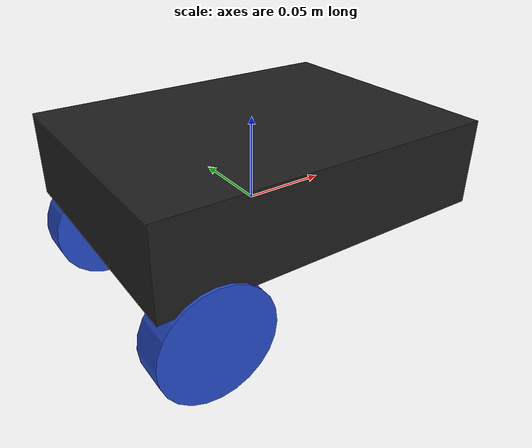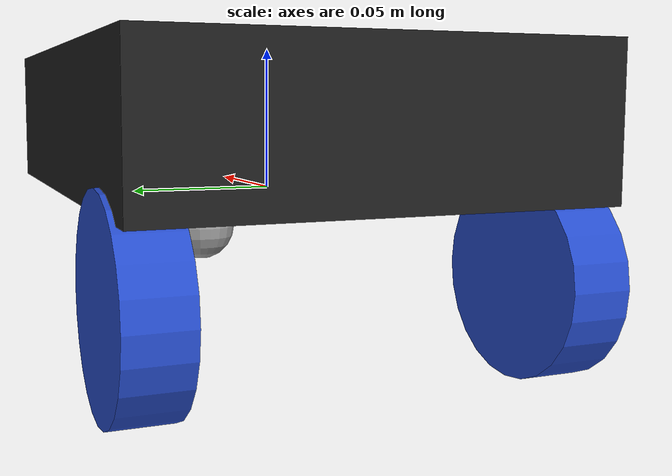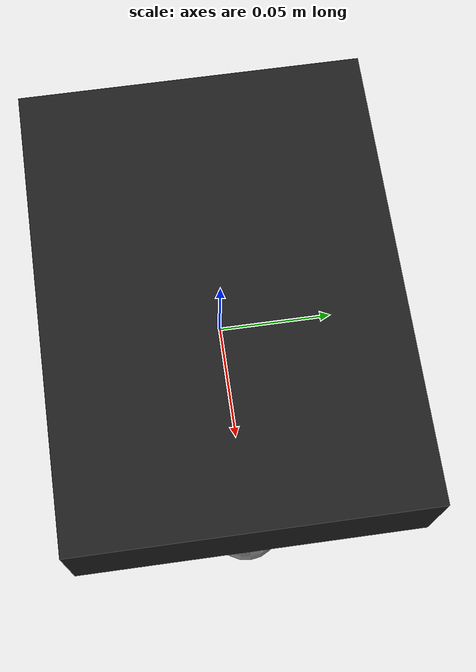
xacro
<?xml version="1.0"?>
<!-- Basic differential drive mobile base -->
<robot xmlns:xacro="http://www.ros.org/wiki/xacro" name="diffdrive_robot">
  <xacro:arg name="prefix" default="" />

  <xacro:include filename="$(find farmbot_description)/urdf/diffbot_description.urdf.xacro" />

  <!-- Import Rviz colors -->
  <xacro:include filename="$(find farmbot_description)/urdf/diffbot.materials.xacro" />

</robot>

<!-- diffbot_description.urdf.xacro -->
<robot xmlns:xacro="http://www.ros.org/wiki/xacro">

  <!-- Constants for robot dimensions -->
  <xacro:property name="PI" value="3.1415926535897931"/>
  <xacro:property name="base_mass" value="0.3" /> <!-- arbitrary value for base mass -->
  <xacro:property name="base_width" value="0.2" />
  <xacro:property name="base_length" value="0.15" />
  <xacro:property name="base_height" value="0.05" />
  <xacro:property name="wheel_mass" value="0.3" /> <!-- arbitrary value for wheel mass -->
  <xacro:property name="wheel_len" value="0.020" />
  <xacro:property name="wheel_radius" value="0.033" />
  <xacro:property name="caster_wheel_mass" value="0.1" /> <!-- arbitrary value for caster wheel mass -->
  <xacro:property name="caster_wheel_radius" value="0.015" />
  <xacro:property name="z_offset" value="-${base_height/2}" /> <!-- Space btw top of beam and the each joint -->

  <!-- Base Link -->
  <link name="base_link">
    <collision>
      <origin xyz="0 0 0" rpy="0 0 0"/>
      <geometry>
        <box size="${base_width} ${base_length} ${base_height}"/>
      </geometry>
    </collision>

    <visual>
      <origin xyz="0 0 ${base_height/2}" rpy="0 0 0"/>
      <geometry>
        <box size="${base_width} ${base_length} ${base_height}"/>
      </geometry>
      <material name="black"/>
    </visual>

    <inertial>
      <origin xyz="0 0 0" rpy="0 0 0"/>
      <mass value="${base_mass}"/>
      <inertia
        ixx="${base_mass / 12.0 * (base_length*base_length + base_height*base_height)}" ixy="0.0" ixz="0.0"
        iyy="${base_mass / 12.0 * (base_height*base_height + base_width*base_width)}" iyz="0.0"
        izz="${base_mass / 12.0 * (base_width*base_width + base_length*base_length)}"/>
      </inertial>
    </link>

    <joint name="left_wheel_joint" type="continuous">
      <parent link="base_link"/>
      <child link="left_wheel"/>
      <origin xyz="-0.07 -${base_width/3} ${z_offset}" rpy="0 0 0"/>
      <axis xyz="0 1 0"/>
      <dynamics damping="0.2"/>
    </joint>

    <!-- left wheel Link -->
    <link name="left_wheel">
      <collision>
        <origin xyz="0 0 0" rpy="${PI/2} 0 0"/>
        <geometry>
          <cylinder length="${wheel_len}" radius="${wheel_radius}"/>
        </geometry>
      </collision>

      <visual>
        <origin xyz="0 0 0" rpy="${PI/2} 0 0"/>
        <geometry>
          <cylinder length="${wheel_len}" radius="${wheel_radius}"/>
        </geometry>
        <material name="blue"/>
      </visual>

      <inertial>
        <origin xyz="0 0 0" rpy="${PI/2} 0 0"/>
        <mass value="${wheel_mass}"/>
        <inertia
          ixx="${0.5 * wheel_mass * wheel_radius * wheel_radius}" ixy="0.0" ixz="0.0"
          iyy="${0.5 * wheel_mass * wheel_radius * wheel_radius}" iyz="0.0"
          izz="${0.5 * wheel_mass * (wheel_radius * wheel_radius + wheel_len * wheel_len) / 2}" />
      </inertial>
      </link>

    <joint name="right_wheel_joint" type="continuous">
      <parent link="base_link"/>
      <child link="right_wheel"/>
      <origin xyz="-0.07 ${base_width/3} ${z_offset}" rpy="0 0 0"/>
      <axis xyz="0 1 0"/>
      <dynamics damping="0.2"/>
    </joint>

    <!-- right wheel Link -->
    <link name="right_wheel">
      <collision>
        <origin xyz="0 0 0" rpy="${PI/2} 0 0"/>
        <geometry>
          <cylinder length="${wheel_len}" radius="${wheel_radius}"/>
        </geometry>
      </collision>

      <visual>
        <origin xyz="0 0 0" rpy="${PI/2} 0 0"/>
        <geometry>
          <cylinder length="${wheel_len}" radius="${wheel_radius}"/>
        </geometry>
        <material name="blue"/>
      </visual>

      <inertial>
        <origin xyz="0 0 0" rpy="${PI/2} 0 0"/>
        <mass value="${wheel_mass}"/>
        <inertia
          ixx="${0.5 * wheel_mass * wheel_radius * wheel_radius}" ixy="0.0" ixz="0.0"
          iyy="${0.5 * wheel_mass * wheel_radius * wheel_radius}" iyz="0.0"
          izz="${0.5 * wheel_mass * (wheel_radius * wheel_radius + wheel_len * wheel_len) / 2}"/>
        </inertial>
      </link>

    <joint name="caster_frontal_wheel_joint" type="fixed">
      <parent link="base_link"/>
      <child link="caster_frontal_wheel"/>
      <origin xyz="${base_width/2 - caster_wheel_radius} 0 ${z_offset}" rpy="0 0 0"/>
    </joint>

    <!-- caster frontal wheel Link -->
    <link name="caster_frontal_wheel">
      <collision>
        <origin xyz="0 0 0" rpy="0 0 0"/>
        <geometry>
          <sphere radius="${caster_wheel_radius}"/>
        </geometry>
      </collision>

      <visual>
        <origin xyz="0 0 0" rpy="0 0 0"/>
        <geometry>
          <sphere radius="${caster_wheel_radius}"/>
        </geometry>
        <material name="grey"/>
      </visual>

      <inertial>
        <origin xyz="0 0 0" rpy="0 0 0"/>
        <mass value="${caster_wheel_mass}"/>
        <inertia
          ixx="${caster_wheel_mass * 0.4 * (caster_wheel_radius * caster_wheel_radius)}" ixy="0.0" ixz="0.0"
          iyy="${caster_wheel_mass * 0.4 * (caster_wheel_radius * caster_wheel_radius)}" iyz="0.0"
          izz="${caster_wheel_mass * 0.4 * (caster_wheel_radius * caster_wheel_radius)}"/>
        </inertial>
      </link>

</robot>
